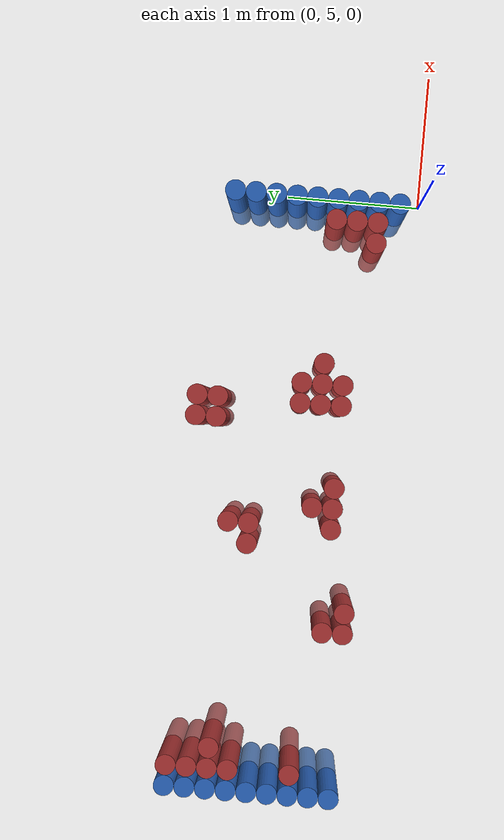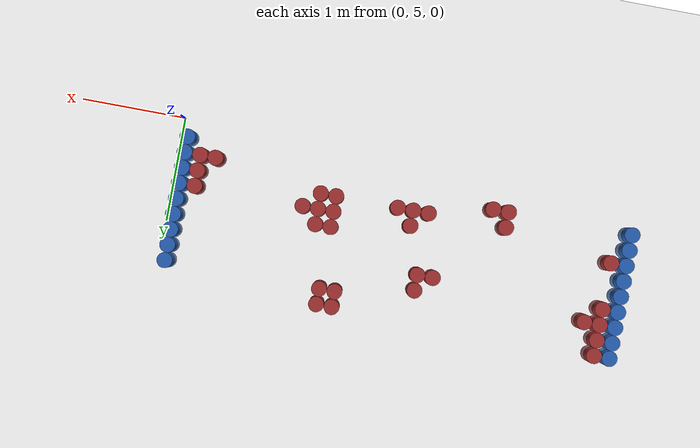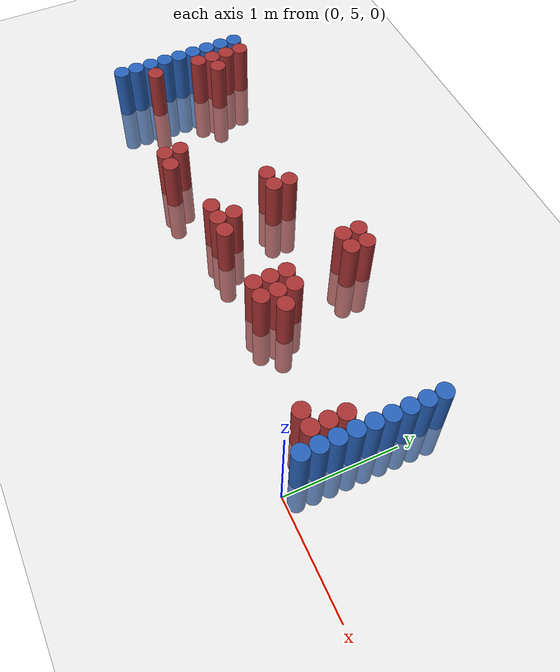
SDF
<sdf version="1.6">
 <world name="default">
  <model name="ground_plane">
   <static>1</static>
   <link name="link">
    <collision name="collision">
     <geometry><plane><normal>0 0 1</normal><size>100 100</size></plane></geometry>
     <surface><friction><ode><mu>100</mu><mu2>50</mu2></ode></friction></surface>
    </collision>
    <visual name="visual">
     <cast_shadows>0</cast_shadows>
     <geometry><plane><normal>0 0 1</normal><size>100 100</size></plane></geometry>
     <material>
      <script><uri>file://media/materials/scripts/gazebo.material</uri><name>Gazebo/Grey</name></script>
     </material>
    </visual>
   </link>
  </model>
  <model name="unit_cylinder_97">
   <static>1</static>
   <pose>-4.425000 5.325000 0.000000 0.000000 0.000000 0.000000</pose>
   <link name="link">
    <inertial>
     <mass>1</mass>
     <inertia><ixx>0.145833</ixx><ixy>0</ixy><ixz>0</ixz><iyy>0.145833</iyy><iyz>0</iyz><izz>0.125</izz></inertia>
    </inertial>
    <collision name="collision">
     <geometry><cylinder><radius>0.075000</radius><length>1</length></cylinder></geometry>
    </collision>
    <visual name="visual">
     <geometry><cylinder><radius>0.075000</radius><length>1</length></cylinder></geometry>
     <material>
      <ambient>0.152000 0.379000 0.720000 1</ambient>
      <diffuse>0.152000 0.379000 0.720000 1</diffuse>
     </material>
     <material>
      <script><name>Gazebo/Grey</name><uri>file://media/materials/scripts/gazebo.material</uri></script>
     </material>
    </visual>
   </link>
  </model>
  <model name="unit_cylinder_98">
   <static>1</static>
   <pose>-4.425000 5.475000 0.000000 0.000000 0.000000 0.000000</pose>
   <link name="link">
    <inertial>
     <mass>1</mass>
     <inertia><ixx>0.145833</ixx><ixy>0</ixy><ixz>0</ixz><iyy>0.145833</iyy><iyz>0</iyz><izz>0.125</izz></inertia>
    </inertial>
    <collision name="collision">
     <geometry><cylinder><radius>0.075000</radius><length>1</length></cylinder></geometry>
    </collision>
    <visual name="visual">
     <geometry><cylinder><radius>0.075000</radius><length>1</length></cylinder></geometry>
     <material>
      <ambient>0.152000 0.379000 0.720000 1</ambient>
      <diffuse>0.152000 0.379000 0.720000 1</diffuse>
     </material>
     <material>
      <script><name>Gazebo/Grey</name><uri>file://media/materials/scripts/gazebo.material</uri></script>
     </material>
    </visual>
   </link>
  </model>
  <model name="unit_cylinder_99">
   <static>1</static>
   <pose>-4.425000 5.625000 0.000000 0.000000 0.000000 0.000000</pose>
   <link name="link">
    <inertial>
     <mass>1</mass>
     <inertia><ixx>0.145833</ixx><ixy>0</ixy><ixz>0</ixz><iyy>0.145833</iyy><iyz>0</iyz><izz>0.125</izz></inertia>
    </inertial>
    <collision name="collision">
     <geometry><cylinder><radius>0.075000</radius><length>1</length></cylinder></geometry>
    </collision>
    <visual name="visual">
     <geometry><cylinder><radius>0.075000</radius><length>1</length></cylinder></geometry>
     <material>
      <ambient>0.152000 0.379000 0.720000 1</ambient>
      <diffuse>0.152000 0.379000 0.720000 1</diffuse>
     </material>
     <material>
      <script><name>Gazebo/Grey</name><uri>file://media/materials/scripts/gazebo.material</uri></script>
     </material>
    </visual>
   </link>
  </model>
  <model name="unit_cylinder_100">
   <static>1</static>
   <pose>-4.425000 5.775000 0.000000 0.000000 0.000000 0.000000</pose>
   <link name="link">
    <inertial>
     <mass>1</mass>
     <inertia><ixx>0.145833</ixx><ixy>0</ixy><ixz>0</ixz><iyy>0.145833</iyy><iyz>0</iyz><izz>0.125</izz></inertia>
    </inertial>
    <collision name="collision">
     <geometry><cylinder><radius>0.075000</radius><length>1</length></cylinder></geometry>
    </collision>
    <visual name="visual">
     <geometry><cylinder><radius>0.075000</radius><length>1</length></cylinder></geometry>
     <material>
      <ambient>0.152000 0.379000 0.720000 1</ambient>
      <diffuse>0.152000 0.379000 0.720000 1</diffuse>
     </material>
     <material>
      <script><name>Gazebo/Grey</name><uri>file://media/materials/scripts/gazebo.material</uri></script>
     </material>
    </visual>
   </link>
  </model>
  <model name="unit_cylinder_101">
   <static>1</static>
   <pose>-4.425000 5.925000 0.000000 0.000000 0.000000 0.000000</pose>
   <link name="link">
    <inertial>
     <mass>1</mass>
     <inertia><ixx>0.145833</ixx><ixy>0</ixy><ixz>0</ixz><iyy>0.145833</iyy><iyz>0</iyz><izz>0.125</izz></inertia>
    </inertial>
    <collision name="collision">
     <geometry><cylinder><radius>0.075000</radius><length>1</length></cylinder></geometry>
    </collision>
    <visual name="visual">
     <geometry><cylinder><radius>0.075000</radius><length>1</length></cylinder></geometry>
     <material>
      <ambient>0.152000 0.379000 0.720000 1</ambient>
      <diffuse>0.152000 0.379000 0.720000 1</diffuse>
     </material>
     <material>
      <script><name>Gazebo/Grey</name><uri>file://media/materials/scripts/gazebo.material</uri></script>
     </material>
    </visual>
   </link>
  </model>
  <model name="unit_cylinder_102">
   <static>1</static>
   <pose>-4.425000 6.075000 0.000000 0.000000 0.000000 0.000000</pose>
   <link name="link">
    <inertial>
     <mass>1</mass>
     <inertia><ixx>0.145833</ixx><ixy>0</ixy><ixz>0</ixz><iyy>0.145833</iyy><iyz>0</iyz><izz>0.125</izz></inertia>
    </inertial>
    <collision name="collision">
     <geometry><cylinder><radius>0.075000</radius><length>1</length></cylinder></geometry>
    </collision>
    <visual name="visual">
     <geometry><cylinder><radius>0.075000</radius><length>1</length></cylinder></geometry>
     <material>
      <ambient>0.152000 0.379000 0.720000 1</ambient>
      <diffuse>0.152000 0.379000 0.720000 1</diffuse>
     </material>
     <material>
      <script><name>Gazebo/Grey</name><uri>file://media/materials/scripts/gazebo.material</uri></script>
     </material>
    </visual>
   </link>
  </model>
  <model name="unit_cylinder_103">
   <static>1</static>
   <pose>-4.425000 6.225000 0.000000 0.000000 0.000000 0.000000</pose>
   <link name="link">
    <inertial>
     <mass>1</mass>
     <inertia><ixx>0.145833</ixx><ixy>0</ixy><ixz>0</ixz><iyy>0.145833</iyy><iyz>0</iyz><izz>0.125</izz></inertia>
    </inertial>
    <collision name="collision">
     <geometry><cylinder><radius>0.075000</radius><length>1</length></cylinder></geometry>
    </collision>
    <visual name="visual">
     <geometry><cylinder><radius>0.075000</radius><length>1</length></cylinder></geometry>
     <material>
      <ambient>0.152000 0.379000 0.720000 1</ambient>
      <diffuse>0.152000 0.379000 0.720000 1</diffuse>
     </material>
     <material>
      <script><name>Gazebo/Grey</name><uri>file://media/materials/scripts/gazebo.material</uri></script>
     </material>
    </visual>
   </link>
  </model>
  <model name="unit_cylinder_104">
   <static>1</static>
   <pose>-4.425000 6.375000 0.000000 0.000000 0.000000 0.000000</pose>
   <link name="link">
    <inertial>
     <mass>1</mass>
     <inertia><ixx>0.145833</ixx><ixy>0</ixy><ixz>0</ixz><iyy>0.145833</iyy><iyz>0</iyz><izz>0.125</izz></inertia>
    </inertial>
    <collision name="collision">
     <geometry><cylinder><radius>0.075000</radius><length>1</length></cylinder></geometry>
    </collision>
    <visual name="visual">
     <geometry><cylinder><radius>0.075000</radius><length>1</length></cylinder></geometry>
     <material>
      <ambient>0.152000 0.379000 0.720000 1</ambient>
      <diffuse>0.152000 0.379000 0.720000 1</diffuse>
     </material>
     <material>
      <script><name>Gazebo/Grey</name><uri>file://media/materials/scripts/gazebo.material</uri></script>
     </material>
    </visual>
   </link>
  </model>
  <model name="unit_cylinder_105">
   <static>1</static>
   <pose>-4.425000 6.525000 0.000000 0.000000 0.000000 0.000000</pose>
   <link name="link">
    <inertial>
     <mass>1</mass>
     <inertia><ixx>0.145833</ixx><ixy>0</ixy><ixz>0</ixz><iyy>0.145833</iyy><iyz>0</iyz><izz>0.125</izz></inertia>
    </inertial>
    <collision name="collision">
     <geometry><cylinder><radius>0.075000</radius><length>1</length></cylinder></geometry>
    </collision>
    <visual name="visual">
     <geometry><cylinder><radius>0.075000</radius><length>1</length></cylinder></geometry>
     <material>
      <ambient>0.152000 0.379000 0.720000 1</ambient>
      <diffuse>0.152000 0.379000 0.720000 1</diffuse>
     </material>
     <material>
      <script><name>Gazebo/Grey</name><uri>file://media/materials/scripts/gazebo.material</uri></script>
     </material>
    </visual>
   </link>
  </model>
  <model name="unit_cylinder_126">
   <static>1</static>
   <pose>-4.275000 5.625000 0.000000 0.000000 0.000000 0.000000</pose>
   <link name="link">
    <inertial>
     <mass>1</mass>
     <inertia><ixx>0.145833</ixx><ixy>0</ixy><ixz>0</ixz><iyy>0.145833</iyy><iyz>0</iyz><izz>0.125</izz></inertia>
    </inertial>
    <collision name="collision">
     <geometry><cylinder><radius>0.075000</radius><length>1</length></cylinder></geometry>
    </collision>
    <visual name="visual">
     <geometry><cylinder><radius>0.075000</radius><length>1</length></cylinder></geometry>
     <material>
      <ambient>0.648000 0.192000 0.192000 1</ambient>
      <diffuse>0.648000 0.192000 0.192000 1</diffuse>
     </material>
     <material>
      <script><name>Gazebo/Grey</name><uri>file://media/materials/scripts/gazebo.material</uri></script>
     </material>
    </visual>
   </link>
  </model>
  <model name="unit_cylinder_127">
   <static>1</static>
   <pose>-4.275000 6.075000 0.000000 0.000000 0.000000 0.000000</pose>
   <link name="link">
    <inertial>
     <mass>1</mass>
     <inertia><ixx>0.145833</ixx><ixy>0</ixy><ixz>0</ixz><iyy>0.145833</iyy><iyz>0</iyz><izz>0.125</izz></inertia>
    </inertial>
    <collision name="collision">
     <geometry><cylinder><radius>0.075000</radius><length>1</length></cylinder></geometry>
    </collision>
    <visual name="visual">
     <geometry><cylinder><radius>0.075000</radius><length>1</length></cylinder></geometry>
     <material>
      <ambient>0.648000 0.192000 0.192000 1</ambient>
      <diffuse>0.648000 0.192000 0.192000 1</diffuse>
     </material>
     <material>
      <script><name>Gazebo/Grey</name><uri>file://media/materials/scripts/gazebo.material</uri></script>
     </material>
    </visual>
   </link>
  </model>
  <model name="unit_cylinder_128">
   <static>1</static>
   <pose>-4.275000 6.225000 0.000000 0.000000 0.000000 0.000000</pose>
   <link name="link">
    <inertial>
     <mass>1</mass>
     <inertia><ixx>0.145833</ixx><ixy>0</ixy><ixz>0</ixz><iyy>0.145833</iyy><iyz>0</iyz><izz>0.125</izz></inertia>
    </inertial>
    <collision name="collision">
     <geometry><cylinder><radius>0.075000</radius><length>1</length></cylinder></geometry>
    </collision>
    <visual name="visual">
     <geometry><cylinder><radius>0.075000</radius><length>1</length></cylinder></geometry>
     <material>
      <ambient>0.648000 0.192000 0.192000 1</ambient>
      <diffuse>0.648000 0.192000 0.192000 1</diffuse>
     </material>
     <material>
      <script><name>Gazebo/Grey</name><uri>file://media/materials/scripts/gazebo.material</uri></script>
     </material>
    </visual>
   </link>
  </model>
  <model name="unit_cylinder_129">
   <static>1</static>
   <pose>-4.275000 6.375000 0.000000 0.000000 0.000000 0.000000</pose>
   <link name="link">
    <inertial>
     <mass>1</mass>
     <inertia><ixx>0.145833</ixx><ixy>0</ixy><ixz>0</ixz><iyy>0.145833</iyy><iyz>0</iyz><izz>0.125</izz></inertia>
    </inertial>
    <collision name="collision">
     <geometry><cylinder><radius>0.075000</radius><length>1</length></cylinder></geometry>
    </collision>
    <visual name="visual">
     <geometry><cylinder><radius>0.075000</radius><length>1</length></cylinder></geometry>
     <material>
      <ambient>0.648000 0.192000 0.192000 1</ambient>
      <diffuse>0.648000 0.192000 0.192000 1</diffuse>
     </material>
     <material>
      <script><name>Gazebo/Grey</name><uri>file://media/materials/scripts/gazebo.material</uri></script>
     </material>
    </visual>
   </link>
  </model>
  <model name="unit_cylinder_130">
   <static>1</static>
   <pose>-4.275000 6.525000 0.000000 0.000000 0.000000 0.000000</pose>
   <link name="link">
    <inertial>
     <mass>1</mass>
     <inertia><ixx>0.145833</ixx><ixy>0</ixy><ixz>0</ixz><iyy>0.145833</iyy><iyz>0</iyz><izz>0.125</izz></inertia>
    </inertial>
    <collision name="collision">
     <geometry><cylinder><radius>0.075000</radius><length>1</length></cylinder></geometry>
    </collision>
    <visual name="visual">
     <geometry><cylinder><radius>0.075000</radius><length>1</length></cylinder></geometry>
     <material>
      <ambient>0.648000 0.192000 0.192000 1</ambient>
      <diffuse>0.648000 0.192000 0.192000 1</diffuse>
     </material>
     <material>
      <script><name>Gazebo/Grey</name><uri>file://media/materials/scripts/gazebo.material</uri></script>
     </material>
    </visual>
   </link>
  </model>
  <model name="unit_cylinder_140">
   <static>1</static>
   <pose>-4.125000 6.225000 0.000000 0.000000 0.000000 0.000000</pose>
   <link name="link">
    <inertial>
     <mass>1</mass>
     <inertia><ixx>0.145833</ixx><ixy>0</ixy><ixz>0</ixz><iyy>0.145833</iyy><iyz>0</iyz><izz>0.125</izz></inertia>
    </inertial>
    <collision name="collision">
     <geometry><cylinder><radius>0.075000</radius><length>1</length></cylinder></geometry>
    </collision>
    <visual name="visual">
     <geometry><cylinder><radius>0.075000</radius><length>1</length></cylinder></geometry>
     <material>
      <ambient>0.648000 0.192000 0.192000 1</ambient>
      <diffuse>0.648000 0.192000 0.192000 1</diffuse>
     </material>
     <material>
      <script><name>Gazebo/Grey</name><uri>file://media/materials/scripts/gazebo.material</uri></script>
     </material>
    </visual>
   </link>
  </model>
  <model name="unit_cylinder_167">
   <static>1</static>
   <pose>-3.225000 5.325000 0.000000 0.000000 0.000000 0.000000</pose>
   <link name="link">
    <inertial>
     <mass>1</mass>
     <inertia><ixx>0.145833</ixx><ixy>0</ixy><ixz>0</ixz><iyy>0.145833</iyy><iyz>0</iyz><izz>0.125</izz></inertia>
    </inertial>
    <collision name="collision">
     <geometry><cylinder><radius>0.075000</radius><length>1</length></cylinder></geometry>
    </collision>
    <visual name="visual">
     <geometry><cylinder><radius>0.075000</radius><length>1</length></cylinder></geometry>
     <material>
      <ambient>0.648000 0.192000 0.192000 1</ambient>
      <diffuse>0.648000 0.192000 0.192000 1</diffuse>
     </material>
     <material>
      <script><name>Gazebo/Grey</name><uri>file://media/materials/scripts/gazebo.material</uri></script>
     </material>
    </visual>
   </link>
  </model>
  <model name="unit_cylinder_168">
   <static>1</static>
   <pose>-3.225000 5.475000 0.000000 0.000000 0.000000 0.000000</pose>
   <link name="link">
    <inertial>
     <mass>1</mass>
     <inertia><ixx>0.145833</ixx><ixy>0</ixy><ixz>0</ixz><iyy>0.145833</iyy><iyz>0</iyz><izz>0.125</izz></inertia>
    </inertial>
    <collision name="collision">
     <geometry><cylinder><radius>0.075000</radius><length>1</length></cylinder></geometry>
    </collision>
    <visual name="visual">
     <geometry><cylinder><radius>0.075000</radius><length>1</length></cylinder></geometry>
     <material>
      <ambient>0.648000 0.192000 0.192000 1</ambient>
      <diffuse>0.648000 0.192000 0.192000 1</diffuse>
     </material>
     <material>
      <script><name>Gazebo/Grey</name><uri>file://media/materials/scripts/gazebo.material</uri></script>
     </material>
    </visual>
   </link>
  </model>
  <model name="unit_cylinder_171">
   <static>1</static>
   <pose>-3.075000 5.325000 0.000000 0.000000 0.000000 0.000000</pose>
   <link name="link">
    <inertial>
     <mass>1</mass>
     <inertia><ixx>0.145833</ixx><ixy>0</ixy><ixz>0</ixz><iyy>0.145833</iyy><iyz>0</iyz><izz>0.125</izz></inertia>
    </inertial>
    <collision name="collision">
     <geometry><cylinder><radius>0.075000</radius><length>1</length></cylinder></geometry>
    </collision>
    <visual name="visual">
     <geometry><cylinder><radius>0.075000</radius><length>1</length></cylinder></geometry>
     <material>
      <ambient>0.648000 0.192000 0.192000 1</ambient>
      <diffuse>0.648000 0.192000 0.192000 1</diffuse>
     </material>
     <material>
      <script><name>Gazebo/Grey</name><uri>file://media/materials/scripts/gazebo.material</uri></script>
     </material>
    </visual>
   </link>
  </model>
  <model name="unit_cylinder_184">
   <static>1</static>
   <pose>-2.625000 6.075000 0.000000 0.000000 0.000000 0.000000</pose>
   <link name="link">
    <inertial>
     <mass>1</mass>
     <inertia><ixx>0.145833</ixx><ixy>0</ixy><ixz>0</ixz><iyy>0.145833</iyy><iyz>0</iyz><izz>0.125</izz></inertia>
    </inertial>
    <collision name="collision">
     <geometry><cylinder><radius>0.075000</radius><length>1</length></cylinder></geometry>
    </collision>
    <visual name="visual">
     <geometry><cylinder><radius>0.075000</radius><length>1</length></cylinder></geometry>
     <material>
      <ambient>0.648000 0.192000 0.192000 1</ambient>
      <diffuse>0.648000 0.192000 0.192000 1</diffuse>
     </material>
     <material>
      <script><name>Gazebo/Grey</name><uri>file://media/materials/scripts/gazebo.material</uri></script>
     </material>
    </visual>
   </link>
  </model>
  <model name="unit_cylinder_187">
   <static>1</static>
   <pose>-2.475000 5.475000 0.000000 0.000000 0.000000 0.000000</pose>
   <link name="link">
    <inertial>
     <mass>1</mass>
     <inertia><ixx>0.145833</ixx><ixy>0</ixy><ixz>0</ixz><iyy>0.145833</iyy><iyz>0</iyz><izz>0.125</izz></inertia>
    </inertial>
    <collision name="collision">
     <geometry><cylinder><radius>0.075000</radius><length>1</length></cylinder></geometry>
    </collision>
    <visual name="visual">
     <geometry><cylinder><radius>0.075000</radius><length>1</length></cylinder></geometry>
     <material>
      <ambient>0.648000 0.192000 0.192000 1</ambient>
      <diffuse>0.648000 0.192000 0.192000 1</diffuse>
     </material>
     <material>
      <script><name>Gazebo/Grey</name><uri>file://media/materials/scripts/gazebo.material</uri></script>
     </material>
    </visual>
   </link>
  </model>
  <model name="unit_cylinder_188">
   <static>1</static>
   <pose>-2.475000 6.075000 0.000000 0.000000 0.000000 0.000000</pose>
   <link name="link">
    <inertial>
     <mass>1</mass>
     <inertia><ixx>0.145833</ixx><ixy>0</ixy><ixz>0</ixz><iyy>0.145833</iyy><iyz>0</iyz><izz>0.125</izz></inertia>
    </inertial>
    <collision name="collision">
     <geometry><cylinder><radius>0.075000</radius><length>1</length></cylinder></geometry>
    </collision>
    <visual name="visual">
     <geometry><cylinder><radius>0.075000</radius><length>1</length></cylinder></geometry>
     <material>
      <ambient>0.648000 0.192000 0.192000 1</ambient>
      <diffuse>0.648000 0.192000 0.192000 1</diffuse>
     </material>
     <material>
      <script><name>Gazebo/Grey</name><uri>file://media/materials/scripts/gazebo.material</uri></script>
     </material>
    </visual>
   </link>
  </model>
  <model name="unit_cylinder_189">
   <static>1</static>
   <pose>-2.475000 6.225000 0.000000 0.000000 0.000000 0.000000</pose>
   <link name="link">
    <inertial>
     <mass>1</mass>
     <inertia><ixx>0.145833</ixx><ixy>0</ixy><ixz>0</ixz><iyy>0.145833</iyy><iyz>0</iyz><izz>0.125</izz></inertia>
    </inertial>
    <collision name="collision">
     <geometry><cylinder><radius>0.075000</radius><length>1</length></cylinder></geometry>
    </collision>
    <visual name="visual">
     <geometry><cylinder><radius>0.075000</radius><length>1</length></cylinder></geometry>
     <material>
      <ambient>0.648000 0.192000 0.192000 1</ambient>
      <diffuse>0.648000 0.192000 0.192000 1</diffuse>
     </material>
     <material>
      <script><name>Gazebo/Grey</name><uri>file://media/materials/scripts/gazebo.material</uri></script>
     </material>
    </visual>
   </link>
  </model>
  <model name="unit_cylinder_190">
   <static>1</static>
   <pose>-2.325000 5.475000 0.000000 0.000000 0.000000 0.000000</pose>
   <link name="link">
    <inertial>
     <mass>1</mass>
     <inertia><ixx>0.145833</ixx><ixy>0</ixy><ixz>0</ixz><iyy>0.145833</iyy><iyz>0</iyz><izz>0.125</izz></inertia>
    </inertial>
    <collision name="collision">
     <geometry><cylinder><radius>0.075000</radius><length>1</length></cylinder></geometry>
    </collision>
    <visual name="visual">
     <geometry><cylinder><radius>0.075000</radius><length>1</length></cylinder></geometry>
     <material>
      <ambient>0.648000 0.192000 0.192000 1</ambient>
      <diffuse>0.648000 0.192000 0.192000 1</diffuse>
     </material>
     <material>
      <script><name>Gazebo/Grey</name><uri>file://media/materials/scripts/gazebo.material</uri></script>
     </material>
    </visual>
   </link>
  </model>
  <model name="unit_cylinder_191">
   <static>1</static>
   <pose>-2.325000 5.625000 0.000000 0.000000 0.000000 0.000000</pose>
   <link name="link">
    <inertial>
     <mass>1</mass>
     <inertia><ixx>0.145833</ixx><ixy>0</ixy><ixz>0</ixz><iyy>0.145833</iyy><iyz>0</iyz><izz>0.125</izz></inertia>
    </inertial>
    <collision name="collision">
     <geometry><cylinder><radius>0.075000</radius><length>1</length></cylinder></geometry>
    </collision>
    <visual name="visual">
     <geometry><cylinder><radius>0.075000</radius><length>1</length></cylinder></geometry>
     <material>
      <ambient>0.648000 0.192000 0.192000 1</ambient>
      <diffuse>0.648000 0.192000 0.192000 1</diffuse>
     </material>
     <material>
      <script><name>Gazebo/Grey</name><uri>file://media/materials/scripts/gazebo.material</uri></script>
     </material>
    </visual>
   </link>
  </model>
  <model name="unit_cylinder_192">
   <static>1</static>
   <pose>-2.175000 5.475000 0.000000 0.000000 0.000000 0.000000</pose>
   <link name="link">
    <inertial>
     <mass>1</mass>
     <inertia><ixx>0.145833</ixx><ixy>0</ixy><ixz>0</ixz><iyy>0.145833</iyy><iyz>0</iyz><izz>0.125</izz></inertia>
    </inertial>
    <collision name="collision">
     <geometry><cylinder><radius>0.075000</radius><length>1</length></cylinder></geometry>
    </collision>
    <visual name="visual">
     <geometry><cylinder><radius>0.075000</radius><length>1</length></cylinder></geometry>
     <material>
      <ambient>0.648000 0.192000 0.192000 1</ambient>
      <diffuse>0.648000 0.192000 0.192000 1</diffuse>
     </material>
     <material>
      <script><name>Gazebo/Grey</name><uri>file://media/materials/scripts/gazebo.material</uri></script>
     </material>
    </visual>
   </link>
  </model>
  <model name="unit_cylinder_196">
   <static>1</static>
   <pose>-1.725000 6.375000 0.000000 0.000000 0.000000 0.000000</pose>
   <link name="link">
    <inertial>
     <mass>1</mass>
     <inertia><ixx>0.145833</ixx><ixy>0</ixy><ixz>0</ixz><iyy>0.145833</iyy><iyz>0</iyz><izz>0.125</izz></inertia>
    </inertial>
    <collision name="collision">
     <geometry><cylinder><radius>0.075000</radius><length>1</length></cylinder></geometry>
    </collision>
    <visual name="visual">
     <geometry><cylinder><radius>0.075000</radius><length>1</length></cylinder></geometry>
     <material>
      <ambient>0.648000 0.192000 0.192000 1</ambient>
      <diffuse>0.648000 0.192000 0.192000 1</diffuse>
     </material>
     <material>
      <script><name>Gazebo/Grey</name><uri>file://media/materials/scripts/gazebo.material</uri></script>
     </material>
    </visual>
   </link>
  </model>
  <model name="unit_cylinder_197">
   <static>1</static>
   <pose>-1.725000 6.525000 0.000000 0.000000 0.000000 0.000000</pose>
   <link name="link">
    <inertial>
     <mass>1</mass>
     <inertia><ixx>0.145833</ixx><ixy>0</ixy><ixz>0</ixz><iyy>0.145833</iyy><iyz>0</iyz><izz>0.125</izz></inertia>
    </inertial>
    <collision name="collision">
     <geometry><cylinder><radius>0.075000</radius><length>1</length></cylinder></geometry>
    </collision>
    <visual name="visual">
     <geometry><cylinder><radius>0.075000</radius><length>1</length></cylinder></geometry>
     <material>
      <ambient>0.648000 0.192000 0.192000 1</ambient>
      <diffuse>0.648000 0.192000 0.192000 1</diffuse>
     </material>
     <material>
      <script><name>Gazebo/Grey</name><uri>file://media/materials/scripts/gazebo.material</uri></script>
     </material>
    </visual>
   </link>
  </model>
  <model name="unit_cylinder_200">
   <static>1</static>
   <pose>-1.575000 5.475000 0.000000 0.000000 0.000000 0.000000</pose>
   <link name="link">
    <inertial>
     <mass>1</mass>
     <inertia><ixx>0.145833</ixx><ixy>0</ixy><ixz>0</ixz><iyy>0.145833</iyy><iyz>0</iyz><izz>0.125</izz></inertia>
    </inertial>
    <collision name="collision">
     <geometry><cylinder><radius>0.075000</radius><length>1</length></cylinder></geometry>
    </collision>
    <visual name="visual">
     <geometry><cylinder><radius>0.075000</radius><length>1</length></cylinder></geometry>
     <material>
      <ambient>0.648000 0.192000 0.192000 1</ambient>
      <diffuse>0.648000 0.192000 0.192000 1</diffuse>
     </material>
     <material>
      <script><name>Gazebo/Grey</name><uri>file://media/materials/scripts/gazebo.material</uri></script>
     </material>
    </visual>
   </link>
  </model>
  <model name="unit_cylinder_201">
   <static>1</static>
   <pose>-1.575000 5.625000 0.000000 0.000000 0.000000 0.000000</pose>
   <link name="link">
    <inertial>
     <mass>1</mass>
     <inertia><ixx>0.145833</ixx><ixy>0</ixy><ixz>0</ixz><iyy>0.145833</iyy><iyz>0</iyz><izz>0.125</izz></inertia>
    </inertial>
    <collision name="collision">
     <geometry><cylinder><radius>0.075000</radius><length>1</length></cylinder></geometry>
    </collision>
    <visual name="visual">
     <geometry><cylinder><radius>0.075000</radius><length>1</length></cylinder></geometry>
     <material>
      <ambient>0.648000 0.192000 0.192000 1</ambient>
      <diffuse>0.648000 0.192000 0.192000 1</diffuse>
     </material>
     <material>
      <script><name>Gazebo/Grey</name><uri>file://media/materials/scripts/gazebo.material</uri></script>
     </material>
    </visual>
   </link>
  </model>
  <model name="unit_cylinder_202">
   <static>1</static>
   <pose>-1.575000 5.775000 0.000000 0.000000 0.000000 0.000000</pose>
   <link name="link">
    <inertial>
     <mass>1</mass>
     <inertia><ixx>0.145833</ixx><ixy>0</ixy><ixz>0</ixz><iyy>0.145833</iyy><iyz>0</iyz><izz>0.125</izz></inertia>
    </inertial>
    <collision name="collision">
     <geometry><cylinder><radius>0.075000</radius><length>1</length></cylinder></geometry>
    </collision>
    <visual name="visual">
     <geometry><cylinder><radius>0.075000</radius><length>1</length></cylinder></geometry>
     <material>
      <ambient>0.648000 0.192000 0.192000 1</ambient>
      <diffuse>0.648000 0.192000 0.192000 1</diffuse>
     </material>
     <material>
      <script><name>Gazebo/Grey</name><uri>file://media/materials/scripts/gazebo.material</uri></script>
     </material>
    </visual>
   </link>
  </model>
  <model name="unit_cylinder_203">
   <static>1</static>
   <pose>-1.575000 6.375000 0.000000 0.000000 0.000000 0.000000</pose>
   <link name="link">
    <inertial>
     <mass>1</mass>
     <inertia><ixx>0.145833</ixx><ixy>0</ixy><ixz>0</ixz><iyy>0.145833</iyy><iyz>0</iyz><izz>0.125</izz></inertia>
    </inertial>
    <collision name="collision">
     <geometry><cylinder><radius>0.075000</radius><length>1</length></cylinder></geometry>
    </collision>
    <visual name="visual">
     <geometry><cylinder><radius>0.075000</radius><length>1</length></cylinder></geometry>
     <material>
      <ambient>0.648000 0.192000 0.192000 1</ambient>
      <diffuse>0.648000 0.192000 0.192000 1</diffuse>
     </material>
     <material>
      <script><name>Gazebo/Grey</name><uri>file://media/materials/scripts/gazebo.material</uri></script>
     </material>
    </visual>
   </link>
  </model>
  <model name="unit_cylinder_204">
   <static>1</static>
   <pose>-1.575000 6.525000 0.000000 0.000000 0.000000 0.000000</pose>
   <link name="link">
    <inertial>
     <mass>1</mass>
     <inertia><ixx>0.145833</ixx><ixy>0</ixy><ixz>0</ixz><iyy>0.145833</iyy><iyz>0</iyz><izz>0.125</izz></inertia>
    </inertial>
    <collision name="collision">
     <geometry><cylinder><radius>0.075000</radius><length>1</length></cylinder></geometry>
    </collision>
    <visual name="visual">
     <geometry><cylinder><radius>0.075000</radius><length>1</length></cylinder></geometry>
     <material>
      <ambient>0.648000 0.192000 0.192000 1</ambient>
      <diffuse>0.648000 0.192000 0.192000 1</diffuse>
     </material>
     <material>
      <script><name>Gazebo/Grey</name><uri>file://media/materials/scripts/gazebo.material</uri></script>
     </material>
    </visual>
   </link>
  </model>
  <model name="unit_cylinder_208">
   <static>1</static>
   <pose>-1.425000 5.475000 0.000000 0.000000 0.000000 0.000000</pose>
   <link name="link">
    <inertial>
     <mass>1</mass>
     <inertia><ixx>0.145833</ixx><ixy>0</ixy><ixz>0</ixz><iyy>0.145833</iyy><iyz>0</iyz><izz>0.125</izz></inertia>
    </inertial>
    <collision name="collision">
     <geometry><cylinder><radius>0.075000</radius><length>1</length></cylinder></geometry>
    </collision>
    <visual name="visual">
     <geometry><cylinder><radius>0.075000</radius><length>1</length></cylinder></geometry>
     <material>
      <ambient>0.648000 0.192000 0.192000 1</ambient>
      <diffuse>0.648000 0.192000 0.192000 1</diffuse>
     </material>
     <material>
      <script><name>Gazebo/Grey</name><uri>file://media/materials/scripts/gazebo.material</uri></script>
     </material>
    </visual>
   </link>
  </model>
  <model name="unit_cylinder_209">
   <static>1</static>
   <pose>-1.425000 5.625000 0.000000 0.000000 0.000000 0.000000</pose>
   <link name="link">
    <inertial>
     <mass>1</mass>
     <inertia><ixx>0.145833</ixx><ixy>0</ixy><ixz>0</ixz><iyy>0.145833</iyy><iyz>0</iyz><izz>0.125</izz></inertia>
    </inertial>
    <collision name="collision">
     <geometry><cylinder><radius>0.075000</radius><length>1</length></cylinder></geometry>
    </collision>
    <visual name="visual">
     <geometry><cylinder><radius>0.075000</radius><length>1</length></cylinder></geometry>
     <material>
      <ambient>0.648000 0.192000 0.192000 1</ambient>
      <diffuse>0.648000 0.192000 0.192000 1</diffuse>
     </material>
     <material>
      <script><name>Gazebo/Grey</name><uri>file://media/materials/scripts/gazebo.material</uri></script>
     </material>
    </visual>
   </link>
  </model>
  <model name="unit_cylinder_210">
   <static>1</static>
   <pose>-1.425000 5.775000 0.000000 0.000000 0.000000 0.000000</pose>
   <link name="link">
    <inertial>
     <mass>1</mass>
     <inertia><ixx>0.145833</ixx><ixy>0</ixy><ixz>0</ixz><iyy>0.145833</iyy><iyz>0</iyz><izz>0.125</izz></inertia>
    </inertial>
    <collision name="collision">
     <geometry><cylinder><radius>0.075000</radius><length>1</length></cylinder></geometry>
    </collision>
    <visual name="visual">
     <geometry><cylinder><radius>0.075000</radius><length>1</length></cylinder></geometry>
     <material>
      <ambient>0.648000 0.192000 0.192000 1</ambient>
      <diffuse>0.648000 0.192000 0.192000 1</diffuse>
     </material>
     <material>
      <script><name>Gazebo/Grey</name><uri>file://media/materials/scripts/gazebo.material</uri></script>
     </material>
    </visual>
   </link>
  </model>
  <model name="unit_cylinder_219">
   <static>1</static>
   <pose>-1.275000 5.625000 0.000000 0.000000 0.000000 0.000000</pose>
   <link name="link">
    <inertial>
     <mass>1</mass>
     <inertia><ixx>0.145833</ixx><ixy>0</ixy><ixz>0</ixz><iyy>0.145833</iyy><iyz>0</iyz><izz>0.125</izz></inertia>
    </inertial>
    <collision name="collision">
     <geometry><cylinder><radius>0.075000</radius><length>1</length></cylinder></geometry>
    </collision>
    <visual name="visual">
     <geometry><cylinder><radius>0.075000</radius><length>1</length></cylinder></geometry>
     <material>
      <ambient>0.648000 0.192000 0.192000 1</ambient>
      <diffuse>0.648000 0.192000 0.192000 1</diffuse>
     </material>
     <material>
      <script><name>Gazebo/Grey</name><uri>file://media/materials/scripts/gazebo.material</uri></script>
     </material>
    </visual>
   </link>
  </model>
  <model name="unit_cylinder_250">
   <static>1</static>
   <pose>-0.375000 5.325000 0.000000 0.000000 0.000000 0.000000</pose>
   <link name="link">
    <inertial>
     <mass>1</mass>
     <inertia><ixx>0.145833</ixx><ixy>0</ixy><ixz>0</ixz><iyy>0.145833</iyy><iyz>0</iyz><izz>0.125</izz></inertia>
    </inertial>
    <collision name="collision">
     <geometry><cylinder><radius>0.075000</radius><length>1</length></cylinder></geometry>
    </collision>
    <visual name="visual">
     <geometry><cylinder><radius>0.075000</radius><length>1</length></cylinder></geometry>
     <material>
      <ambient>0.648000 0.192000 0.192000 1</ambient>
      <diffuse>0.648000 0.192000 0.192000 1</diffuse>
     </material>
     <material>
      <script><name>Gazebo/Grey</name><uri>file://media/materials/scripts/gazebo.material</uri></script>
     </material>
    </visual>
   </link>
  </model>
  <model name="unit_cylinder_255">
   <static>1</static>
   <pose>-0.225000 5.325000 0.000000 0.000000 0.000000 0.000000</pose>
   <link name="link">
    <inertial>
     <mass>1</mass>
     <inertia><ixx>0.145833</ixx><ixy>0</ixy><ixz>0</ixz><iyy>0.145833</iyy><iyz>0</iyz><izz>0.125</izz></inertia>
    </inertial>
    <collision name="collision">
     <geometry><cylinder><radius>0.075000</radius><length>1</length></cylinder></geometry>
    </collision>
    <visual name="visual">
     <geometry><cylinder><radius>0.075000</radius><length>1</length></cylinder></geometry>
     <material>
      <ambient>0.648000 0.192000 0.192000 1</ambient>
      <diffuse>0.648000 0.192000 0.192000 1</diffuse>
     </material>
     <material>
      <script><name>Gazebo/Grey</name><uri>file://media/materials/scripts/gazebo.material</uri></script>
     </material>
    </visual>
   </link>
  </model>
  <model name="unit_cylinder_256">
   <static>1</static>
   <pose>-0.225000 5.475000 0.000000 0.000000 0.000000 0.000000</pose>
   <link name="link">
    <inertial>
     <mass>1</mass>
     <inertia><ixx>0.145833</ixx><ixy>0</ixy><ixz>0</ixz><iyy>0.145833</iyy><iyz>0</iyz><izz>0.125</izz></inertia>
    </inertial>
    <collision name="collision">
     <geometry><cylinder><radius>0.075000</radius><length>1</length></cylinder></geometry>
    </collision>
    <visual name="visual">
     <geometry><cylinder><radius>0.075000</radius><length>1</length></cylinder></geometry>
     <material>
      <ambient>0.648000 0.192000 0.192000 1</ambient>
      <diffuse>0.648000 0.192000 0.192000 1</diffuse>
     </material>
     <material>
      <script><name>Gazebo/Grey</name><uri>file://media/materials/scripts/gazebo.material</uri></script>
     </material>
    </visual>
   </link>
  </model>
  <model name="unit_cylinder_257">
   <static>1</static>
   <pose>-0.225000 5.625000 0.000000 0.000000 0.000000 0.000000</pose>
   <link name="link">
    <inertial>
     <mass>1</mass>
     <inertia><ixx>0.145833</ixx><ixy>0</ixy><ixz>0</ixz><iyy>0.145833</iyy><iyz>0</iyz><izz>0.125</izz></inertia>
    </inertial>
    <collision name="collision">
     <geometry><cylinder><radius>0.075000</radius><length>1</length></cylinder></geometry>
    </collision>
    <visual name="visual">
     <geometry><cylinder><radius>0.075000</radius><length>1</length></cylinder></geometry>
     <material>
      <ambient>0.648000 0.192000 0.192000 1</ambient>
      <diffuse>0.648000 0.192000 0.192000 1</diffuse>
     </material>
     <material>
      <script><name>Gazebo/Grey</name><uri>file://media/materials/scripts/gazebo.material</uri></script>
     </material>
    </visual>
   </link>
  </model>
  <model name="unit_cylinder_266">
   <static>1</static>
   <pose>-0.075000 5.175000 0.000000 0.000000 0.000000 0.000000</pose>
   <link name="link">
    <inertial>
     <mass>1</mass>
     <inertia><ixx>0.145833</ixx><ixy>0</ixy><ixz>0</ixz><iyy>0.145833</iyy><iyz>0</iyz><izz>0.125</izz></inertia>
    </inertial>
    <collision name="collision">
     <geometry><cylinder><radius>0.075000</radius><length>1</length></cylinder></geometry>
    </collision>
    <visual name="visual">
     <geometry><cylinder><radius>0.075000</radius><length>1</length></cylinder></geometry>
     <material>
      <ambient>0.152000 0.379000 0.720000 1</ambient>
      <diffuse>0.152000 0.379000 0.720000 1</diffuse>
     </material>
     <material>
      <script><name>Gazebo/Grey</name><uri>file://media/materials/scripts/gazebo.material</uri></script>
     </material>
    </visual>
   </link>
  </model>
  <model name="unit_cylinder_267">
   <static>1</static>
   <pose>-0.075000 5.325000 0.000000 0.000000 0.000000 0.000000</pose>
   <link name="link">
    <inertial>
     <mass>1</mass>
     <inertia><ixx>0.145833</ixx><ixy>0</ixy><ixz>0</ixz><iyy>0.145833</iyy><iyz>0</iyz><izz>0.125</izz></inertia>
    </inertial>
    <collision name="collision">
     <geometry><cylinder><radius>0.075000</radius><length>1</length></cylinder></geometry>
    </collision>
    <visual name="visual">
     <geometry><cylinder><radius>0.075000</radius><length>1</length></cylinder></geometry>
     <material>
      <ambient>0.152000 0.379000 0.720000 1</ambient>
      <diffuse>0.152000 0.379000 0.720000 1</diffuse>
     </material>
     <material>
      <script><name>Gazebo/Grey</name><uri>file://media/materials/scripts/gazebo.material</uri></script>
     </material>
    </visual>
   </link>
  </model>
  <model name="unit_cylinder_268">
   <static>1</static>
   <pose>-0.075000 5.475000 0.000000 0.000000 0.000000 0.000000</pose>
   <link name="link">
    <inertial>
     <mass>1</mass>
     <inertia><ixx>0.145833</ixx><ixy>0</ixy><ixz>0</ixz><iyy>0.145833</iyy><iyz>0</iyz><izz>0.125</izz></inertia>
    </inertial>
    <collision name="collision">
     <geometry><cylinder><radius>0.075000</radius><length>1</length></cylinder></geometry>
    </collision>
    <visual name="visual">
     <geometry><cylinder><radius>0.075000</radius><length>1</length></cylinder></geometry>
     <material>
      <ambient>0.152000 0.379000 0.720000 1</ambient>
      <diffuse>0.152000 0.379000 0.720000 1</diffuse>
     </material>
     <material>
      <script><name>Gazebo/Grey</name><uri>file://media/materials/scripts/gazebo.material</uri></script>
     </material>
    </visual>
   </link>
  </model>
  <model name="unit_cylinder_269">
   <static>1</static>
   <pose>-0.075000 5.625000 0.000000 0.000000 0.000000 0.000000</pose>
   <link name="link">
    <inertial>
     <mass>1</mass>
     <inertia><ixx>0.145833</ixx><ixy>0</ixy><ixz>0</ixz><iyy>0.145833</iyy><iyz>0</iyz><izz>0.125</izz></inertia>
    </inertial>
    <collision name="collision">
     <geometry><cylinder><radius>0.075000</radius><length>1</length></cylinder></geometry>
    </collision>
    <visual name="visual">
     <geometry><cylinder><radius>0.075000</radius><length>1</length></cylinder></geometry>
     <material>
      <ambient>0.152000 0.379000 0.720000 1</ambient>
      <diffuse>0.152000 0.379000 0.720000 1</diffuse>
     </material>
     <material>
      <script><name>Gazebo/Grey</name><uri>file://media/materials/scripts/gazebo.material</uri></script>
     </material>
    </visual>
   </link>
  </model>
  <model name="unit_cylinder_270">
   <static>1</static>
   <pose>-0.075000 5.775000 0.000000 0.000000 0.000000 0.000000</pose>
   <link name="link">
    <inertial>
     <mass>1</mass>
     <inertia><ixx>0.145833</ixx><ixy>0</ixy><ixz>0</ixz><iyy>0.145833</iyy><iyz>0</iyz><izz>0.125</izz></inertia>
    </inertial>
    <collision name="collision">
     <geometry><cylinder><radius>0.075000</radius><length>1</length></cylinder></geometry>
    </collision>
    <visual name="visual">
     <geometry><cylinder><radius>0.075000</radius><length>1</length></cylinder></geometry>
     <material>
      <ambient>0.152000 0.379000 0.720000 1</ambient>
      <diffuse>0.152000 0.379000 0.720000 1</diffuse>
     </material>
     <material>
      <script><name>Gazebo/Grey</name><uri>file://media/materials/scripts/gazebo.material</uri></script>
     </material>
    </visual>
   </link>
  </model>
  <model name="unit_cylinder_271">
   <static>1</static>
   <pose>-0.075000 5.925000 0.000000 0.000000 0.000000 0.000000</pose>
   <link name="link">
    <inertial>
     <mass>1</mass>
     <inertia><ixx>0.145833</ixx><ixy>0</ixy><ixz>0</ixz><iyy>0.145833</iyy><iyz>0</iyz><izz>0.125</izz></inertia>
    </inertial>
    <collision name="collision">
     <geometry><cylinder><radius>0.075000</radius><length>1</length></cylinder></geometry>
    </collision>
    <visual name="visual">
     <geometry><cylinder><radius>0.075000</radius><length>1</length></cylinder></geometry>
     <material>
      <ambient>0.152000 0.379000 0.720000 1</ambient>
      <diffuse>0.152000 0.379000 0.720000 1</diffuse>
     </material>
     <material>
      <script><name>Gazebo/Grey</name><uri>file://media/materials/scripts/gazebo.material</uri></script>
     </material>
    </visual>
   </link>
  </model>
  <model name="unit_cylinder_272">
   <static>1</static>
   <pose>-0.075000 6.075000 0.000000 0.000000 0.000000 0.000000</pose>
   <link name="link">
    <inertial>
     <mass>1</mass>
     <inertia><ixx>0.145833</ixx><ixy>0</ixy><ixz>0</ixz><iyy>0.145833</iyy><iyz>0</iyz><izz>0.125</izz></inertia>
    </inertial>
    <collision name="collision">
     <geometry><cylinder><radius>0.075000</radius><length>1</length></cylinder></geometry>
    </collision>
    <visual name="visual">
     <geometry><cylinder><radius>0.075000</radius><length>1</length></cylinder></geometry>
     <material>
      <ambient>0.152000 0.379000 0.720000 1</ambient>
      <diffuse>0.152000 0.379000 0.720000 1</diffuse>
     </material>
     <material>
      <script><name>Gazebo/Grey</name><uri>file://media/materials/scripts/gazebo.material</uri></script>
     </material>
    </visual>
   </link>
  </model>
  <model name="unit_cylinder_273">
   <static>1</static>
   <pose>-0.075000 6.225000 0.000000 0.000000 0.000000 0.000000</pose>
   <link name="link">
    <inertial>
     <mass>1</mass>
     <inertia><ixx>0.145833</ixx><ixy>0</ixy><ixz>0</ixz><iyy>0.145833</iyy><iyz>0</iyz><izz>0.125</izz></inertia>
    </inertial>
    <collision name="collision">
     <geometry><cylinder><radius>0.075000</radius><length>1</length></cylinder></geometry>
    </collision>
    <visual name="visual">
     <geometry><cylinder><radius>0.075000</radius><length>1</length></cylinder></geometry>
     <material>
      <ambient>0.152000 0.379000 0.720000 1</ambient>
      <diffuse>0.152000 0.379000 0.720000 1</diffuse>
     </material>
     <material>
      <script><name>Gazebo/Grey</name><uri>file://media/materials/scripts/gazebo.material</uri></script>
     </material>
    </visual>
   </link>
  </model>
  <model name="unit_cylinder_274">
   <static>1</static>
   <pose>-0.075000 6.375000 0.000000 0.000000 0.000000 0.000000</pose>
   <link name="link">
    <inertial>
     <mass>1</mass>
     <inertia><ixx>0.145833</ixx><ixy>0</ixy><ixz>0</ixz><iyy>0.145833</iyy><iyz>0</iyz><izz>0.125</izz></inertia>
    </inertial>
    <collision name="collision">
     <geometry><cylinder><radius>0.075000</radius><length>1</length></cylinder></geometry>
    </collision>
    <visual name="visual">
     <geometry><cylinder><radius>0.075000</radius><length>1</length></cylinder></geometry>
     <material>
      <ambient>0.152000 0.379000 0.720000 1</ambient>
      <diffuse>0.152000 0.379000 0.720000 1</diffuse>
     </material>
     <material>
      <script><name>Gazebo/Grey</name><uri>file://media/materials/scripts/gazebo.material</uri></script>
     </material>
    </visual>
   </link>
  </model>
 </world>
</sdf>
